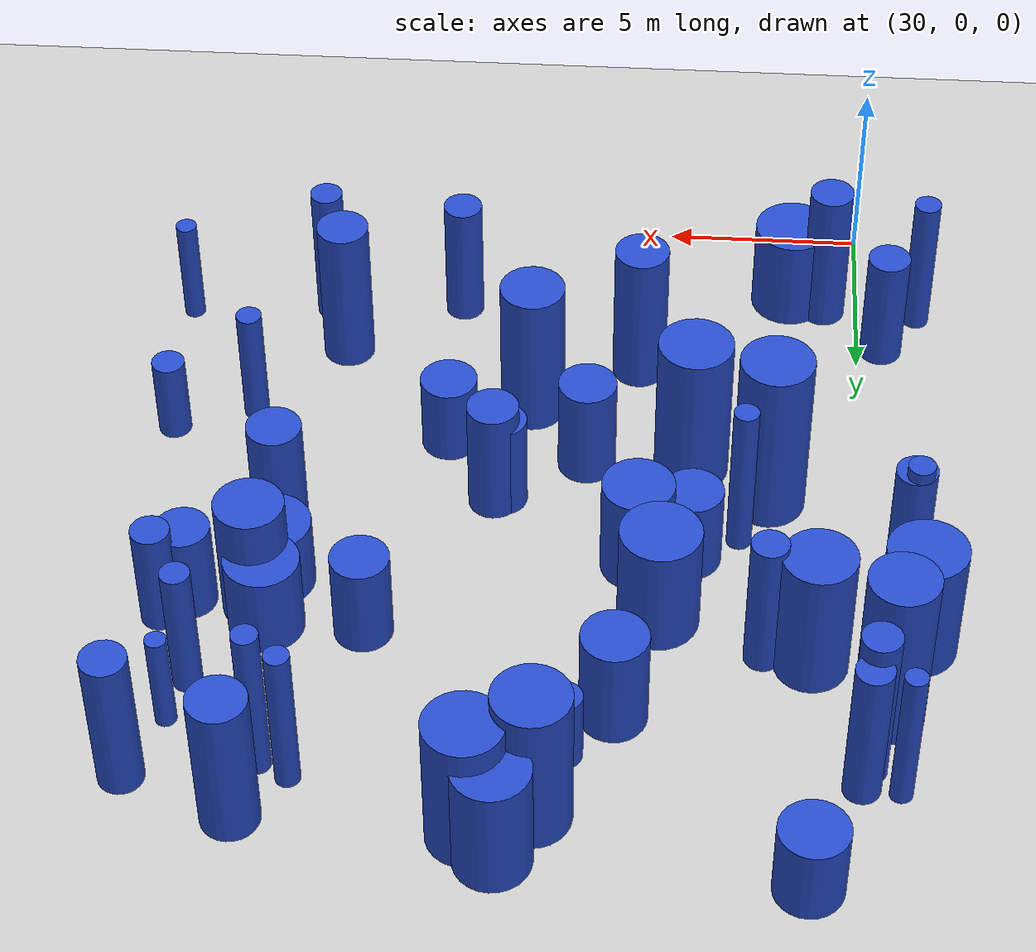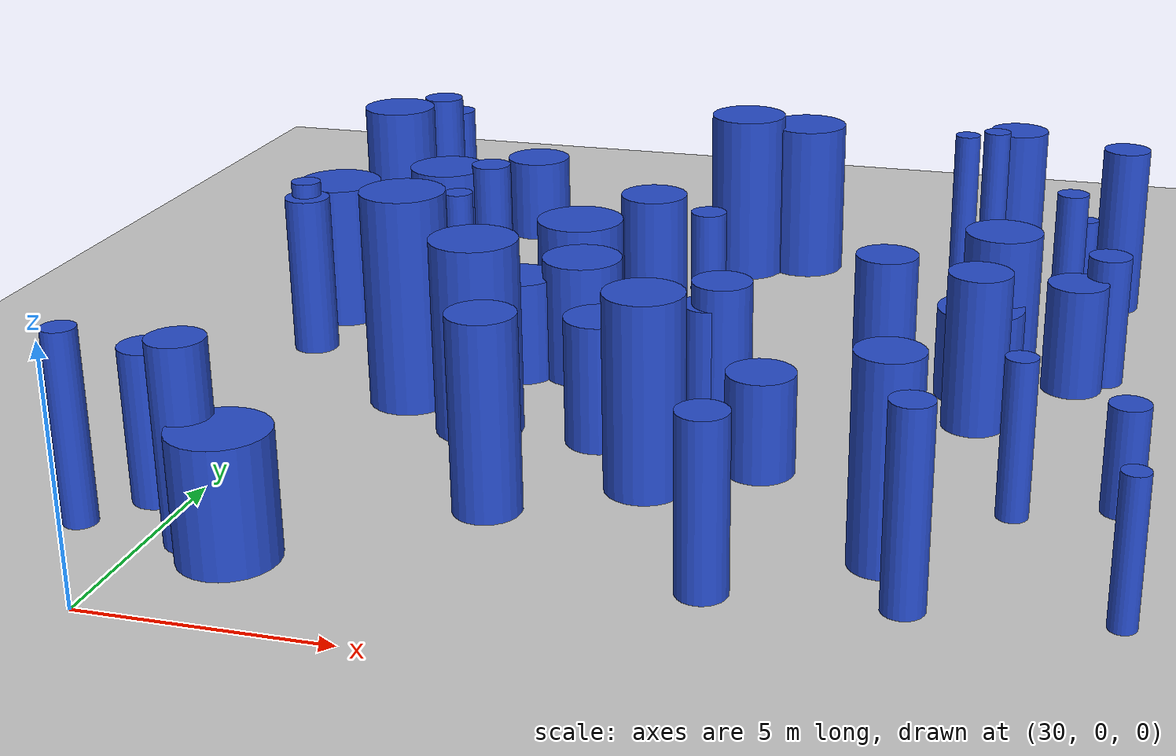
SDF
<sdf version="1.6">
 <world name="default">
  <model name="ground_plane">
   <static>1</static>
   <link name="link">
    <collision name="collision">
     <geometry><plane><normal>0 0 1</normal><size>100 100</size></plane></geometry>
     <surface><friction><ode><mu>100</mu><mu2>50</mu2></ode></friction></surface>
    </collision>
    <visual name="visual">
     <cast_shadows>0</cast_shadows>
     <geometry><plane><normal>0 0 1</normal><size>100 100</size></plane></geometry>
     <material>
      <script><uri>file://media/materials/scripts/gazebo.material</uri><name>Gazebo/Grey</name></script>
     </material>
    </visual>
   </link>
  </model>
  <model name="6">
   <static>0</static>
   <link name="link">
    <inertial>
     <mass>2</mass>
     <inertia>
      <ixx>0.798572</ixx>
      <ixy>0</ixy>
      <ixz>0</ixz>
      <iyy>0.798572</iyy>
      <iyz>0</iyz>
      <izz>0.198941</izz>
     </inertia>
    </inertial>
    <collision name="collision">
     <geometry><cylinder><length>2.04807</length><radius>0.446028</radius></cylinder></geometry>
     <surface><contact><collide_without_contact>1</collide_without_contact></contact></surface>
    </collision>
    <visual name="visual">
     <geometry><cylinder><length>2.04807</length><radius>0.446028</radius></cylinder></geometry>
     <material>
      <script><uri>file://media/materials/scripts/gazebo.material</uri><name>Gazebo/Blue</name></script>
     </material>
    </visual>
    <gravity>0</gravity>
   </link>
   <pose>36.9335 18.7301 1.02404 0 -0 0</pose>
  </model>
  <model name="19">
   <static>0</static>
   <link name="link">
    <inertial>
     <mass>2</mass>
     <inertia><ixx>1.56851</ixx><ixy>0</ixy><ixz>0</ixz><iyy>1.56851</iyy><iyz>0</iyz><izz>0.224417</izz></inertia>
    </inertial>
    <collision name="collision">
     <geometry><cylinder><length>2.95598</length><radius>0.473727</radius></cylinder></geometry>
     <surface><contact><collide_without_contact>1</collide_without_contact></contact></surface>
    </collision>
    <visual name="visual">
     <geometry><cylinder><length>2.95598</length><radius>0.473727</radius></cylinder></geometry>
     <material>
      <script><uri>file://media/materials/scripts/gazebo.material</uri><name>Gazebo/Blue</name></script>
     </material>
    </visual>
    <gravity>0</gravity>
   </link>
   <pose>46.86 15.0199 1.47799 0 -0 0</pose>
  </model>
  <model name="22">
   <static>0</static>
   <link name="link">
    <inertial>
     <mass>2</mass>
     <inertia><ixx>2.6096</ixx><ixy>0</ixy><ixz>0</ixz><iyy>2.6096</iyy><iyz>0</iyz><izz>0.20705</izz></inertia>
    </inertial>
    <collision name="collision">
     <geometry><cylinder><length>3.87769</length><radius>0.455027</radius></cylinder></geometry>
     <surface><contact><collide_without_contact>1</collide_without_contact></contact></surface>
    </collision>
    <visual name="visual">
     <geometry><cylinder><length>3.87769</length><radius>0.455027</radius></cylinder></geometry>
     <material>
      <script><uri>file://media/materials/scripts/gazebo.material</uri><name>Gazebo/Blue</name></script>
     </material>
    </visual>
    <gravity>0</gravity>
   </link>
   <pose>32.4033 15.4487 1.93884 0 -0 0</pose>
  </model>
  <model name="36">
   <static>0</static>
   <link name="link">
    <inertial>
     <mass>2</mass>
     <inertia><ixx>1.08426</ixx><ixy>0</ixy><ixz>0</ixz><iyy>1.08426</iyy><iyz>0</iyz><izz>0.683304</izz></inertia>
    </inertial>
    <collision name="collision">
     <geometry><cylinder><length>2.11084</length><radius>0.826622</radius></cylinder></geometry>
     <surface><contact><collide_without_contact>1</collide_without_contact></contact></surface>
    </collision>
    <visual name="visual">
     <geometry><cylinder><length>2.11084</length><radius>0.826622</radius></cylinder></geometry>
     <material>
      <script><uri>file://media/materials/scripts/gazebo.material</uri><name>Gazebo/Blue</name></script>
     </material>
    </visual>
    <gravity>0</gravity>
   </link>
   <pose>31.3215 22.2177 1.05542 0 -0 0</pose>
  </model>
  <model name="43">
   <static>0</static>
   <link name="link">
    <inertial>
     <mass>2</mass>
     <inertia><ixx>2.34581</ixx><ixy>0</ixy><ixz>0</ixz><iyy>2.34581</iyy><iyz>0</iyz><izz>0.257799</izz></inertia>
    </inertial>
    <collision name="collision">
     <geometry><cylinder><length>3.64712</length><radius>0.507739</radius></cylinder></geometry>
     <surface><contact><collide_without_contact>1</collide_without_contact></contact></surface>
    </collision>
    <visual name="visual">
     <geometry><cylinder><length>3.64712</length><radius>0.507739</radius></cylinder></geometry>
     <material>
      <script><uri>file://media/materials/scripts/gazebo.material</uri><name>Gazebo/Blue</name></script>
     </material>
    </visual>
    <gravity>0</gravity>
   </link>
   <pose>28.9554 12.6154 1.82356 0 -0 0</pose>
  </model>
  <model name="44">
   <static>0</static>
   <link name="link">
    <inertial>
     <mass>2</mass>
     <inertia><ixx>1.1939</ixx><ixy>0</ixy><ixz>0</ixz><iyy>1.1939</iyy><iyz>0</iyz><izz>0.566577</izz></inertia>
    </inertial>
    <collision name="collision">
     <geometry><cylinder><length>2.33744</length><radius>0.752713</radius></cylinder></geometry>
     <surface><contact><collide_without_contact>1</collide_without_contact></contact></surface>
    </collision>
    <visual name="visual">
     <geometry><cylinder><length>2.33744</length><radius>0.752713</radius></cylinder></geometry>
     <material>
      <script><uri>file://media/materials/scripts/gazebo.material</uri><name>Gazebo/Blue</name></script>
     </material>
    </visual>
    <gravity>0</gravity>
   </link>
   <pose>34.1931 12.2769 1.16872 0 -0 0</pose>
  </model>
  <model name="45">
   <static>0</static>
   <link name="link">
    <inertial>
     <mass>2</mass>
     <inertia>
      <ixx>3.27441</ixx>
      <ixy>0</ixy>
      <ixz>0</ixz>
      <iyy>3.27441</iyy>
      <iyz>0</iyz>
      <izz>0.0994808</izz>
     </inertia>
    </inertial>
    <collision name="collision">
     <geometry><cylinder><length>4.39864</length><radius>0.315406</radius></cylinder></geometry>
     <surface><contact><collide_without_contact>1</collide_without_contact></contact></surface>
    </collision>
    <visual name="visual">
     <geometry><cylinder><length>4.39864</length><radius>0.315406</radius></cylinder></geometry>
     <material>
      <script><uri>file://media/materials/scripts/gazebo.material</uri><name>Gazebo/Blue</name></script>
     </material>
    </visual>
    <gravity>0</gravity>
   </link>
   <pose>43.9023 19.4399 2.19932 0 -0 0</pose>
  </model>
  <model name="57">
   <static>0</static>
   <link name="link">
    <inertial>
     <mass>2</mass>
     <inertia>
      <ixx>2.94814</ixx>
      <ixy>0</ixy>
      <ixz>0</ixz>
      <iyy>2.94814</iyy>
      <iyz>0</iyz>
      <izz>0.0910601</izz>
     </inertia>
    </inertial>
    <collision name="collision">
     <geometry><cylinder><length>4.17321</length><radius>0.301762</radius></cylinder></geometry>
     <surface><contact><collide_without_contact>1</collide_without_contact></contact></surface>
    </collision>
    <visual name="visual">
     <geometry><cylinder><length>4.17321</length><radius>0.301762</radius></cylinder></geometry>
     <material>
      <script><uri>file://media/materials/scripts/gazebo.material</uri><name>Gazebo/Blue</name></script>
     </material>
    </visual>
    <gravity>0</gravity>
   </link>
   <pose>43.17 19.804 2.0866 0 -0 0</pose>
  </model>
  <model name="72">
   <static>0</static>
   <link name="link">
    <inertial>
     <mass>2</mass>
     <inertia><ixx>2.87764</ixx><ixy>0</ixy><ixz>0</ixz><iyy>2.87764</iyy><iyz>0</iyz><izz>0.901467</izz></inertia>
    </inertial>
    <collision name="collision">
     <geometry><cylinder><length>3.81594</length><radius>0.949456</radius></cylinder></geometry>
     <surface><contact><collide_without_contact>1</collide_without_contact></contact></surface>
    </collision>
    <visual name="visual">
     <geometry><cylinder><length>3.81594</length><radius>0.949456</radius></cylinder></geometry>
     <material>
      <script><uri>file://media/materials/scripts/gazebo.material</uri><name>Gazebo/Blue</name></script>
     </material>
    </visual>
    <gravity>0</gravity>
   </link>
   <pose>38.974 21.1839 1.90797 0 -0 0</pose>
  </model>
  <model name="82">
   <static>0</static>
   <link name="link">
    <inertial>
     <mass>2</mass>
     <inertia><ixx>1.12573</ixx><ixy>0</ixy><ixz>0</ixz><iyy>1.12573</iyy><iyz>0</iyz><izz>0.909327</izz></inertia>
    </inertial>
    <collision name="collision">
     <geometry><cylinder><length>2.00659</length><radius>0.953587</radius></cylinder></geometry>
     <surface><contact><collide_without_contact>1</collide_without_contact></contact></surface>
    </collision>
    <visual name="visual">
     <geometry><cylinder><length>2.00659</length><radius>0.953587</radius></cylinder></geometry>
     <material>
      <script><uri>file://media/materials/scripts/gazebo.material</uri><name>Gazebo/Blue</name></script>
     </material>
    </visual>
    <gravity>0</gravity>
   </link>
   <pose>44.2313 13.6334 1.0033 0 -0 0</pose>
  </model>
  <model name="83">
   <static>0</static>
   <link name="link">
    <inertial>
     <mass>2</mass>
     <inertia><ixx>2.69133</ixx><ixy>0</ixy><ixz>0</ixz><iyy>2.69133</iyy><iyz>0</iyz><izz>0.117303</izz></inertia>
    </inertial>
    <collision name="collision">
     <geometry><cylinder><length>3.97443</length><radius>0.342496</radius></cylinder></geometry>
     <surface><contact><collide_without_contact>1</collide_without_contact></contact></surface>
    </collision>
    <visual name="visual">
     <geometry><cylinder><length>3.97443</length><radius>0.342496</radius></cylinder></geometry>
     <material>
      <script><uri>file://media/materials/scripts/gazebo.material</uri><name>Gazebo/Blue</name></script>
     </material>
    </visual>
    <gravity>0</gravity>
   </link>
   <pose>28.4111 3.06658 1.98721 0 -0 0</pose>
  </model>
  <model name="86">
   <static>0</static>
   <link name="link">
    <inertial>
     <mass>2</mass>
     <inertia><ixx>3.4008</ixx><ixy>0</ixy><ixz>0</ixz><iyy>3.4008</iyy><iyz>0</iyz><izz>0.876047</izz></inertia>
    </inertial>
    <collision name="collision">
     <geometry><cylinder><length>4.21624</length><radius>0.935974</radius></cylinder></geometry>
     <surface><contact><collide_without_contact>1</collide_without_contact></contact></surface>
    </collision>
    <visual name="visual">
     <geometry><cylinder><length>4.21624</length><radius>0.935974</radius></cylinder></geometry>
     <material>
      <script><uri>file://media/materials/scripts/gazebo.material</uri><name>Gazebo/Blue</name></script>
     </material>
    </visual>
    <gravity>0</gravity>
   </link>
   <pose>34.2648 9.11138 2.10812 0 -0 0</pose>
  </model>
  <model name="87">
   <static>0</static>
   <link name="link">
    <inertial>
     <mass>2</mass>
     <inertia><ixx>2.04351</ixx><ixy>0</ixy><ixz>0</ixz><iyy>2.04351</iyy><iyz>0</iyz><izz>0.993499</izz></inertia>
    </inertial>
    <collision name="collision">
     <geometry><cylinder><length>3.0464</length><radius>0.996744</radius></cylinder></geometry>
     <surface><contact><collide_without_contact>1</collide_without_contact></contact></surface>
    </collision>
    <visual name="visual">
     <geometry><cylinder><length>3.0464</length><radius>0.996744</radius></cylinder></geometry>
     <material>
      <script><uri>file://media/materials/scripts/gazebo.material</uri><name>Gazebo/Blue</name></script>
     </material>
    </visual>
    <gravity>0</gravity>
   </link>
   <pose>34.9165 14.3917 1.5232 0 -0 0</pose>
  </model>
  <model name="88">
   <static>0</static>
   <link name="link">
    <inertial>
     <mass>2</mass>
     <inertia><ixx>1.53786</ixx><ixy>0</ixy><ixz>0</ixz><iyy>1.53786</iyy><iyz>0</iyz><izz>0.534153</izz></inertia>
    </inertial>
    <collision name="collision">
     <geometry><cylinder><length>2.76129</length><radius>0.730858</radius></cylinder></geometry>
     <surface><contact><collide_without_contact>1</collide_without_contact></contact></surface>
    </collision>
    <visual name="visual">
     <geometry><cylinder><length>2.76129</length><radius>0.730858</radius></cylinder></geometry>
     <material>
      <script><uri>file://media/materials/scripts/gazebo.material</uri><name>Gazebo/Blue</name></script>
     </material>
    </visual>
    <gravity>0</gravity>
   </link>
   <pose>36.906 9.11292 1.38065 0 -0 0</pose>
  </model>
  <model name="93">
   <static>0</static>
   <link name="link">
    <inertial>
     <mass>2</mass>
     <inertia><ixx>4.1964</ixx><ixy>0</ixy><ixz>0</ixz><iyy>4.1964</iyy><iyz>0</iyz><izz>0.839935</izz></inertia>
    </inertial>
    <collision name="collision">
     <geometry><cylinder><length>4.76011</length><radius>0.91648</radius></cylinder></geometry>
     <surface><contact><collide_without_contact>1</collide_without_contact></contact></surface>
    </collision>
    <visual name="visual">
     <geometry><cylinder><length>4.76011</length><radius>0.91648</radius></cylinder></geometry>
     <material>
      <script><uri>file://media/materials/scripts/gazebo.material</uri><name>Gazebo/Blue</name></script>
     </material>
    </visual>
    <gravity>0</gravity>
   </link>
   <pose>32.3039 10.2034 2.38005 0 -0 0</pose>
  </model>
  <model name="97">
   <static>0</static>
   <link name="link">
    <inertial>
     <mass>2</mass>
     <inertia><ixx>3.54501</ixx><ixy>0</ixy><ixz>0</ixz><iyy>3.54501</iyy><iyz>0</iyz><izz>0.223195</izz></inertia>
    </inertial>
    <collision name="collision">
     <geometry><cylinder><length>4.53878</length><radius>0.472435</radius></cylinder></geometry>
     <surface><contact><collide_without_contact>1</collide_without_contact></contact></surface>
    </collision>
    <visual name="visual">
     <geometry><cylinder><length>4.53878</length><radius>0.472435</radius></cylinder></geometry>
     <material>
      <script><uri>file://media/materials/scripts/gazebo.material</uri><name>Gazebo/Blue</name></script>
     </material>
    </visual>
    <gravity>0</gravity>
   </link>
   <pose>29.9844 18.7604 2.26939 0 -0 0</pose>
  </model>
  <model name="98">
   <static>0</static>
   <link name="link">
    <inertial>
     <mass>2</mass>
     <inertia><ixx>2.18267</ixx><ixy>0</ixy><ixz>0</ixz><iyy>2.18267</iyy><iyz>0</iyz><izz>0.247763</izz></inertia>
    </inertial>
    <collision name="collision">
     <geometry><cylinder><length>3.51465</length><radius>0.497758</radius></cylinder></geometry>
     <surface><contact><collide_without_contact>1</collide_without_contact></contact></surface>
    </collision>
    <visual name="visual">
     <geometry><cylinder><length>3.51465</length><radius>0.497758</radius></cylinder></geometry>
     <material>
      <script><uri>file://media/materials/scripts/gazebo.material</uri><name>Gazebo/Blue</name></script>
     </material>
    </visual>
    <gravity>0</gravity>
   </link>
   <pose>40.4795 3.31545 1.75732 0 -0 0</pose>
  </model>
  <model name="99">
   <static>0</static>
   <link name="link">
    <inertial>
     <mass>2</mass>
     <inertia>
      <ixx>1.49455</ixx>
      <ixy>0</ixy>
      <ixz>0</ixz>
      <iyy>1.49455</iyy>
      <iyz>0</iyz>
      <izz>0.0714187</izz>
     </inertia>
    </inertial>
    <collision name="collision">
     <geometry><cylinder><length>2.95856</length><radius>0.267243</radius></cylinder></geometry>
     <surface><contact><collide_without_contact>1</collide_without_contact></contact></surface>
    </collision>
    <visual name="visual">
     <geometry><cylinder><length>2.95856</length><radius>0.267243</radius></cylinder></geometry>
     <material>
      <script><uri>file://media/materials/scripts/gazebo.material</uri><name>Gazebo/Blue</name></script>
     </material>
    </visual>
    <gravity>0</gravity>
   </link>
   <pose>47.7187 3.91039 1.47928 0 -0 0</pose>
  </model>
  <model name="100">
   <static>0</static>
   <link name="link">
    <inertial>
     <mass>2</mass>
     <inertia><ixx>2.86751</ixx><ixy>0</ixy><ixz>0</ixz><iyy>2.86751</iyy><iyz>0</iyz><izz>0.204569</izz></inertia>
    </inertial>
    <collision name="collision">
     <geometry><cylinder><length>4.07325</length><radius>0.452293</radius></cylinder></geometry>
     <surface><contact><collide_without_contact>1</collide_without_contact></contact></surface>
    </collision>
    <visual name="visual">
     <geometry><cylinder><length>4.07325</length><radius>0.452293</radius></cylinder></geometry>
     <material>
      <script><uri>file://media/materials/scripts/gazebo.material</uri><name>Gazebo/Blue</name></script>
     </material>
    </visual>
    <gravity>0</gravity>
   </link>
   <pose>30.1114 19.322 2.03662 0 -0 0</pose>
  </model>
  <model name="101">
   <static>0</static>
   <link name="link">
    <inertial>
     <mass>2</mass>
     <inertia><ixx>1.24291</ixx><ixy>0</ixy><ixz>0</ixz><iyy>1.24291</iyy><iyz>0</iyz><izz>0.443789</izz></inertia>
    </inertial>
    <collision name="collision">
     <geometry><cylinder><length>2.47509</length><radius>0.666175</radius></cylinder></geometry>
     <surface><contact><collide_without_contact>1</collide_without_contact></contact></surface>
    </collision>
    <visual name="visual">
     <geometry><cylinder><length>2.47509</length><radius>0.666175</radius></cylinder></geometry>
     <material>
      <script><uri>file://media/materials/scripts/gazebo.material</uri><name>Gazebo/Blue</name></script>
     </material>
    </visual>
    <gravity>0</gravity>
   </link>
   <pose>46.2352 14.4153 1.23755 0 -0 0</pose>
  </model>
  <model name="109">
   <static>0</static>
   <link name="link">
    <inertial>
     <mass>2</mass>
     <inertia>
      <ixx>3.21555</ixx>
      <ixy>0</ixy>
      <ixz>0</ixz>
      <iyy>3.21555</iyy>
      <iyz>0</iyz>
      <izz>0.0969997</izz>
     </inertia>
    </inertial>
    <collision name="collision">
     <geometry><cylinder><length>4.35916</length><radius>0.311448</radius></cylinder></geometry>
     <surface><contact><collide_without_contact>1</collide_without_contact></contact></surface>
    </collision>
    <visual name="visual">
     <geometry><cylinder><length>4.35916</length><radius>0.311448</radius></cylinder></geometry>
     <material>
      <script><uri>file://media/materials/scripts/gazebo.material</uri><name>Gazebo/Blue</name></script>
     </material>
    </visual>
    <gravity>0</gravity>
   </link>
   <pose>33.0139 11.622 2.17958 0 -0 0</pose>
  </model>
  <model name="116">
   <static>0</static>
   <link name="link">
    <inertial>
     <mass>2</mass>
     <inertia><ixx>1.02695</ixx><ixy>0</ixy><ixz>0</ixz><iyy>1.02695</iyy><iyz>0</iyz><izz>0.517282</izz></inertia>
    </inertial>
    <collision name="collision">
     <geometry><cylinder><length>2.14705</length><radius>0.719223</radius></cylinder></geometry>
     <surface><contact><collide_without_contact>1</collide_without_contact></contact></surface>
    </collision>
    <visual name="visual">
     <geometry><cylinder><length>2.14705</length><radius>0.719223</radius></cylinder></geometry>
     <material>
      <script><uri>file://media/materials/scripts/gazebo.material</uri><name>Gazebo/Blue</name></script>
     </material>
    </visual>
    <gravity>0</gravity>
   </link>
   <pose>40.4286 8.5032 1.07353 0 -0 0</pose>
  </model>
  <model name="118">
   <static>0</static>
   <link name="link">
    <inertial>
     <mass>2</mass>
     <inertia><ixx>2.84514</ixx><ixy>0</ixy><ixz>0</ixz><iyy>2.84514</iyy><iyz>0</iyz><izz>0.30271</izz></inertia>
    </inertial>
    <collision name="collision">
     <geometry><cylinder><length>4.02029</length><radius>0.550191</radius></cylinder></geometry>
     <surface><contact><collide_without_contact>1</collide_without_contact></contact></surface>
    </collision>
    <visual name="visual">
     <geometry><cylinder><length>4.02029</length><radius>0.550191</radius></cylinder></geometry>
     <material>
      <script><uri>file://media/materials/scripts/gazebo.material</uri><name>Gazebo/Blue</name></script>
     </material>
    </visual>
    <gravity>0</gravity>
   </link>
   <pose>46.9727 19.9979 2.01015 0 -0 0</pose>
  </model>
  <model name="119">
   <static>0</static>
   <link name="link">
    <inertial>
     <mass>2</mass>
     <inertia><ixx>1.28123</ixx><ixy>0</ixy><ixz>0</ixz><iyy>1.28123</iyy><iyz>0</iyz><izz>0.846377</izz></inertia>
    </inertial>
    <collision name="collision">
     <geometry><cylinder><length>2.26897</length><radius>0.919988</radius></cylinder></geometry>
     <surface><contact><collide_without_contact>1</collide_without_contact></contact></surface>
    </collision>
    <visual name="visual">
     <geometry><cylinder><length>2.26897</length><radius>0.919988</radius></cylinder></geometry>
     <material>
      <script><uri>file://media/materials/scripts/gazebo.material</uri><name>Gazebo/Blue</name></script>
     </material>
    </visual>
    <gravity>0</gravity>
   </link>
   <pose>44.2743 15.1347 1.13449 0 -0 0</pose>
  </model>
  <model name="120">
   <static>0</static>
   <link name="link">
    <inertial>
     <mass>2</mass>
     <inertia><ixx>1.40868</ixx><ixy>0</ixy><ixz>0</ixz><iyy>1.40868</iyy><iyz>0</iyz><izz>0.339273</izz></inertia>
    </inertial>
    <collision name="collision">
     <geometry><cylinder><length>2.72658</length><radius>0.582472</radius></cylinder></geometry>
     <surface><contact><collide_without_contact>1</collide_without_contact></contact></surface>
    </collision>
    <visual name="visual">
     <geometry><cylinder><length>2.72658</length><radius>0.582472</radius></cylinder></geometry>
     <material>
      <script><uri>file://media/materials/scripts/gazebo.material</uri><name>Gazebo/Blue</name></script>
     </material>
    </visual>
    <gravity>0</gravity>
   </link>
   <pose>38.9033 10.5047 1.36329 0 -0 0</pose>
  </model>
  <model name="123">
   <static>0</static>
   <link name="link">
    <inertial>
     <mass>2</mass>
     <inertia><ixx>2.97522</ixx><ixy>0</ixy><ixz>0</ixz><iyy>2.97522</iyy><iyz>0</iyz><izz>0.477931</izz></inertia>
    </inertial>
    <collision name="collision">
     <geometry><cylinder><length>4.05186</length><radius>0.691325</radius></cylinder></geometry>
     <surface><contact><collide_without_contact>1</collide_without_contact></contact></surface>
    </collision>
    <visual name="visual">
     <geometry><cylinder><length>4.05186</length><radius>0.691325</radius></cylinder></geometry>
     <material>
      <script><uri>file://media/materials/scripts/gazebo.material</uri><name>Gazebo/Blue</name></script>
     </material>
    </visual>
    <gravity>0</gravity>
   </link>
   <pose>35.7167 5.49025 2.02593 0 -0 0</pose>
  </model>
  <model name="136">
   <static>0</static>
   <link name="link">
    <inertial>
     <mass>2</mass>
     <inertia><ixx>3.26897</ixx><ixy>0</ixy><ixz>0</ixz><iyy>3.26897</iyy><iyz>0</iyz><izz>0.863669</izz></inertia>
    </inertial>
    <collision name="collision">
     <geometry><cylinder><length>4.12587</length><radius>0.929338</radius></cylinder></geometry>
     <surface><contact><collide_without_contact>1</collide_without_contact></contact></surface>
    </collision>
    <visual name="visual">
     <geometry><cylinder><length>4.12587</length><radius>0.929338</radius></cylinder></geometry>
     <material>
      <script><uri>file://media/materials/scripts/gazebo.material</uri><name>Gazebo/Blue</name></script>
     </material>
    </visual>
    <gravity>0</gravity>
   </link>
   <pose>37.5394 20.5667 2.06294 0 -0 0</pose>
  </model>
  <model name="137">
   <static>0</static>
   <link name="link">
    <inertial>
     <mass>2</mass>
     <inertia><ixx>2.20257</ixx><ixy>0</ixy><ixz>0</ixz><iyy>2.20257</iyy><iyz>0</iyz><izz>0.461862</izz></inertia>
    </inertial>
    <collision name="collision">
     <geometry><cylinder><length>3.43945</length><radius>0.679604</radius></cylinder></geometry>
     <surface><contact><collide_without_contact>1</collide_without_contact></contact></surface>
    </collision>
    <visual name="visual">
     <geometry><cylinder><length>3.43945</length><radius>0.679604</radius></cylinder></geometry>
     <material>
      <script><uri>file://media/materials/scripts/gazebo.material</uri><name>Gazebo/Blue</name></script>
     </material>
    </visual>
    <gravity>0</gravity>
   </link>
   <pose>44.3325 11.8416 1.71973 0 -0 0</pose>
  </model>
  <model name="145">
   <static>0</static>
   <link name="link">
    <inertial>
     <mass>2</mass>
     <inertia><ixx>1.85346</ixx><ixy>0</ixy><ixz>0</ixz><iyy>1.85346</iyy><iyz>0</iyz><izz>0.103431</izz></inertia>
    </inertial>
    <collision name="collision">
     <geometry><cylinder><length>3.28793</length><radius>0.321608</radius></cylinder></geometry>
     <surface><contact><collide_without_contact>1</collide_without_contact></contact></surface>
    </collision>
    <visual name="visual">
     <geometry><cylinder><length>3.28793</length><radius>0.321608</radius></cylinder></geometry>
     <material>
      <script><uri>file://media/materials/scripts/gazebo.material</uri><name>Gazebo/Blue</name></script>
     </material>
    </visual>
    <gravity>0</gravity>
   </link>
   <pose>45.522 7.70919 1.64396 0 -0 0</pose>
  </model>
  <model name="148">
   <static>0</static>
   <link name="link">
    <inertial>
     <mass>2</mass>
     <inertia><ixx>1.67502</ixx><ixy>0</ixy><ixz>0</ixz><iyy>1.67502</iyy><iyz>0</iyz><izz>0.801009</izz></inertia>
    </inertial>
    <collision name="collision">
     <geometry><cylinder><length>2.76534</length><radius>0.894991</radius></cylinder></geometry>
     <surface><contact><collide_without_contact>1</collide_without_contact></contact></surface>
    </collision>
    <visual name="visual">
     <geometry><cylinder><length>2.76534</length><radius>0.894991</radius></cylinder></geometry>
     <material>
      <script><uri>file://media/materials/scripts/gazebo.material</uri><name>Gazebo/Blue</name></script>
     </material>
    </visual>
    <gravity>0</gravity>
   </link>
   <pose>35.5057 12.5909 1.38267 0 -0 0</pose>
  </model>
  <model name="150">
   <static>0</static>
   <link name="link">
    <inertial>
     <mass>2</mass>
     <inertia><ixx>1.93783</ixx><ixy>0</ixy><ixz>0</ixz><iyy>1.93783</iyy><iyz>0</iyz><izz>0.415516</izz></inertia>
    </inertial>
    <collision name="collision">
     <geometry><cylinder><length>3.22187</length><radius>0.644606</radius></cylinder></geometry>
     <surface><contact><collide_without_contact>1</collide_without_contact></contact></surface>
    </collision>
    <visual name="visual">
     <geometry><cylinder><length>3.22187</length><radius>0.644606</radius></cylinder></geometry>
     <material>
      <script><uri>file://media/materials/scripts/gazebo.material</uri><name>Gazebo/Blue</name></script>
     </material>
    </visual>
    <gravity>0</gravity>
   </link>
   <pose>39.1495 10.5867 1.61094 0 -0 0</pose>
  </model>
  <model name="152">
   <static>0</static>
   <link name="link">
    <inertial>
     <mass>2</mass>
     <inertia><ixx>2.38788</ixx><ixy>0</ixy><ixz>0</ixz><iyy>2.38788</iyy><iyz>0</iyz><izz>0.720026</izz></inertia>
    </inertial>
    <collision name="collision">
     <geometry><cylinder><length>3.48816</length><radius>0.848543</radius></cylinder></geometry>
     <surface><contact><collide_without_contact>1</collide_without_contact></contact></surface>
    </collision>
    <visual name="visual">
     <geometry><cylinder><length>3.48816</length><radius>0.848543</radius></cylinder></geometry>
     <material>
      <script><uri>file://media/materials/scripts/gazebo.material</uri><name>Gazebo/Blue</name></script>
     </material>
    </visual>
    <gravity>0</gravity>
   </link>
   <pose>44.5666 14.5232 1.74408 0 -0 0</pose>
  </model>
  <model name="154">
   <static>0</static>
   <link name="link">
    <inertial>
     <mass>2</mass>
     <inertia><ixx>2.68121</ixx><ixy>0</ixy><ixz>0</ixz><iyy>2.68121</iyy><iyz>0</iyz><izz>0.810306</izz></inertia>
    </inertial>
    <collision name="collision">
     <geometry><cylinder><length>3.69545</length><radius>0.90017</radius></cylinder></geometry>
     <surface><contact><collide_without_contact>1</collide_without_contact></contact></surface>
    </collision>
    <visual name="visual">
     <geometry><cylinder><length>3.69545</length><radius>0.90017</radius></cylinder></geometry>
     <material>
      <script><uri>file://media/materials/scripts/gazebo.material</uri><name>Gazebo/Blue</name></script>
     </material>
    </visual>
    <gravity>0</gravity>
   </link>
   <pose>31.2562 15.6058 1.84772 0 -0 0</pose>
  </model>
  <model name="155">
   <static>0</static>
   <link name="link">
    <inertial>
     <mass>2</mass>
     <inertia><ixx>2.71802</ixx><ixy>0</ixy><ixz>0</ixz><iyy>2.71802</iyy><iyz>0</iyz><izz>0.171185</izz></inertia>
    </inertial>
    <collision name="collision">
     <geometry><cylinder><length>3.97424</length><radius>0.413745</radius></cylinder></geometry>
     <surface><contact><collide_without_contact>1</collide_without_contact></contact></surface>
    </collision>
    <visual name="visual">
     <geometry><cylinder><length>3.97424</length><radius>0.413745</radius></cylinder></geometry>
     <material>
      <script><uri>file://media/materials/scripts/gazebo.material</uri><name>Gazebo/Blue</name></script>
     </material>
    </visual>
    <gravity>0</gravity>
   </link>
   <pose>44.0068 3.59498 1.98712 0 -0 0</pose>
  </model>
  <model name="167">
   <static>0</static>
   <link name="link">
    <inertial>
     <mass>2</mass>
     <inertia><ixx>2.97575</ixx><ixy>0</ixy><ixz>0</ixz><iyy>2.97575</iyy><iyz>0</iyz><izz>0.496613</izz></inertia>
    </inertial>
    <collision name="collision">
     <geometry><cylinder><length>4.04533</length><radius>0.704708</radius></cylinder></geometry>
     <surface><contact><collide_without_contact>1</collide_without_contact></contact></surface>
    </collision>
    <visual name="visual">
     <geometry><cylinder><length>4.04533</length><radius>0.704708</radius></cylinder></geometry>
     <material>
      <script><uri>file://media/materials/scripts/gazebo.material</uri><name>Gazebo/Blue</name></script>
     </material>
    </visual>
    <gravity>0</gravity>
   </link>
   <pose>44.3187 21.0253 2.02266 0 -0 0</pose>
  </model>
  <model name="168">
   <static>0</static>
   <link name="link">
    <inertial>
     <mass>2</mass>
     <inertia><ixx>1.86296</ixx><ixy>0</ixy><ixz>0</ixz><iyy>1.86296</iyy><iyz>0</iyz><izz>0.296661</izz></inertia>
    </inertial>
    <collision name="collision">
     <geometry><cylinder><length>3.20745</length><radius>0.544666</radius></cylinder></geometry>
     <surface><contact><collide_without_contact>1</collide_without_contact></contact></surface>
    </collision>
    <visual name="visual">
     <geometry><cylinder><length>3.20745</length><radius>0.544666</radius></cylinder></geometry>
     <material>
      <script><uri>file://media/materials/scripts/gazebo.material</uri><name>Gazebo/Blue</name></script>
     </material>
    </visual>
    <gravity>0</gravity>
   </link>
   <pose>29.3722 4.37823 1.60373 0 -0 0</pose>
  </model>
  <model name="169">
   <static>0</static>
   <link name="link">
    <inertial>
     <mass>2</mass>
     <inertia>
      <ixx>1.27619</ixx>
      <ixy>0</ixy>
      <ixz>0</ixz>
      <iyy>1.27619</iyy>
      <iyz>0</iyz>
      <izz>0.0662221</izz>
     </inertia>
    </inertial>
    <collision name="collision">
     <geometry><cylinder><length>2.73102</length><radius>0.257337</radius></cylinder></geometry>
     <surface><contact><collide_without_contact>1</collide_without_contact></contact></surface>
    </collision>
    <visual name="visual">
     <geometry><cylinder><length>2.73102</length><radius>0.257337</radius></cylinder></geometry>
     <material>
      <script><uri>file://media/materials/scripts/gazebo.material</uri><name>Gazebo/Blue</name></script>
     </material>
    </visual>
    <gravity>0</gravity>
   </link>
   <pose>46.2222 18.2269 1.36551 0 -0 0</pose>
  </model>
  <model name="170">
   <static>0</static>
   <link name="link">
    <inertial>
     <mass>2</mass>
     <inertia><ixx>1.62614</ixx><ixy>0</ixy><ixz>0</ixz><iyy>1.62614</iyy><iyz>0</iyz><izz>0.655865</izz></inertia>
    </inertial>
    <collision name="collision">
     <geometry><cylinder><length>2.79092</length><radius>0.809855</radius></cylinder></geometry>
     <surface><contact><collide_without_contact>1</collide_without_contact></contact></surface>
    </collision>
    <visual name="visual">
     <geometry><cylinder><length>2.79092</length><radius>0.809855</radius></cylinder></geometry>
     <material>
      <script><uri>file://media/materials/scripts/gazebo.material</uri><name>Gazebo/Blue</name></script>
     </material>
    </visual>
    <gravity>0</gravity>
   </link>
   <pose>35.848 17.5071 1.39546 0 -0 0</pose>
  </model>
  <model name="171">
   <static>0</static>
   <link name="link">
    <inertial>
     <mass>2</mass>
     <inertia><ixx>1.32113</ixx><ixy>0</ixy><ixz>0</ixz><iyy>1.32113</iyy><iyz>0</iyz><izz>0.517746</izz></inertia>
    </inertial>
    <collision name="collision">
     <geometry><cylinder><length>2.52459</length><radius>0.719546</radius></cylinder></geometry>
     <surface><contact><collide_without_contact>1</collide_without_contact></contact></surface>
    </collision>
    <visual name="visual">
     <geometry><cylinder><length>2.52459</length><radius>0.719546</radius></cylinder></geometry>
     <material>
      <script><uri>file://media/materials/scripts/gazebo.material</uri><name>Gazebo/Blue</name></script>
     </material>
    </visual>
    <gravity>0</gravity>
   </link>
   <pose>41.9355 15.171 1.26229 0 -0 0</pose>
  </model>
  <model name="175">
   <static>0</static>
   <link name="link">
    <inertial>
     <mass>2</mass>
     <inertia><ixx>2.09233</ixx><ixy>0</ixy><ixz>0</ixz><iyy>2.09233</iyy><iyz>0</iyz><izz>0.850902</izz></inertia>
    </inertial>
    <collision name="collision">
     <geometry><cylinder><length>3.16248</length><radius>0.922444</radius></cylinder></geometry>
     <surface><contact><collide_without_contact>1</collide_without_contact></contact></surface>
    </collision>
    <visual name="visual">
     <geometry><cylinder><length>3.16248</length><radius>0.922444</radius></cylinder></geometry>
     <material>
      <script><uri>file://media/materials/scripts/gazebo.material</uri><name>Gazebo/Blue</name></script>
     </material>
    </visual>
    <gravity>0</gravity>
   </link>
   <pose>38.3389 21.8535 1.58124 0 -0 0</pose>
  </model>
  <model name="182">
   <static>0</static>
   <link name="link">
    <inertial>
     <mass>2</mass>
     <inertia><ixx>2.3455</ixx><ixy>0</ixy><ixz>0</ixz><iyy>2.3455</iyy><iyz>0</iyz><izz>0.128632</izz></inertia>
    </inertial>
    <collision name="collision">
     <geometry><cylinder><length>3.69961</length><radius>0.358653</radius></cylinder></geometry>
     <surface><contact><collide_without_contact>1</collide_without_contact></contact></surface>
    </collision>
    <visual name="visual">
     <geometry><cylinder><length>3.69961</length><radius>0.358653</radius></cylinder></geometry>
     <material>
      <script><uri>file://media/materials/scripts/gazebo.material</uri><name>Gazebo/Blue</name></script>
     </material>
    </visual>
    <gravity>0</gravity>
   </link>
   <pose>45.8853 17.0491 1.84981 0 -0 0</pose>
  </model>
  <model name="186">
   <static>0</static>
   <link name="link">
    <inertial>
     <mass>2</mass>
     <inertia><ixx>1.58975</ixx><ixy>0</ixy><ixz>0</ixz><iyy>1.58975</iyy><iyz>0</iyz><izz>0.976743</izz></inertia>
    </inertial>
    <collision name="collision">
     <geometry><cylinder><length>2.57065</length><radius>0.988303</radius></cylinder></geometry>
     <surface><contact><collide_without_contact>1</collide_without_contact></contact></surface>
    </collision>
    <visual name="visual">
     <geometry><cylinder><length>2.57065</length><radius>0.988303</radius></cylinder></geometry>
     <material>
      <script><uri>file://media/materials/scripts/gazebo.material</uri><name>Gazebo/Blue</name></script>
     </material>
    </visual>
    <gravity>0</gravity>
   </link>
   <pose>31.8033 2.4684 1.28533 0 -0 0</pose>
  </model>
  <model name="195">
   <static>0</static>
   <link name="link">
    <inertial>
     <mass>2</mass>
     <inertia><ixx>2.93314</ixx><ixy>0</ixy><ixz>0</ixz><iyy>2.93314</iyy><iyz>0</iyz><izz>0.320002</izz></inertia>
    </inertial>
    <collision name="collision">
     <geometry><cylinder><length>4.07908</length><radius>0.565687</radius></cylinder></geometry>
     <surface><contact><collide_without_contact>1</collide_without_contact></contact></surface>
    </collision>
    <visual name="visual">
     <geometry><cylinder><length>4.07908</length><radius>0.565687</radius></cylinder></geometry>
     <material>
      <script><uri>file://media/materials/scripts/gazebo.material</uri><name>Gazebo/Blue</name></script>
     </material>
    </visual>
    <gravity>0</gravity>
   </link>
   <pose>30.8856 2.87461 2.03954 0 -0 0</pose>
  </model>
  <model name="199">
   <static>0</static>
   <link name="link">
    <inertial>
     <mass>2</mass>
     <inertia><ixx>2.68232</ixx><ixy>0</ixy><ixz>0</ixz><iyy>2.68232</iyy><iyz>0</iyz><izz>0.110041</izz></inertia>
    </inertial>
    <collision name="collision">
     <geometry><cylinder><length>3.97037</length><radius>0.331725</radius></cylinder></geometry>
     <surface><contact><collide_without_contact>1</collide_without_contact></contact></surface>
    </collision>
    <visual name="visual">
     <geometry><cylinder><length>3.97037</length><radius>0.331725</radius></cylinder></geometry>
     <material>
      <script><uri>file://media/materials/scripts/gazebo.material</uri><name>Gazebo/Blue</name></script>
     </material>
    </visual>
    <gravity>0</gravity>
   </link>
   <pose>28.8775 12.7667 1.98518 0 -0 0</pose>
  </model>
  <model name="200">
   <static>0</static>
   <link name="link">
    <inertial>
     <mass>2</mass>
     <inertia>
      <ixx>2.72184</ixx>
      <ixy>0</ixy>
      <ixz>0</ixz>
      <iyy>2.72184</iyy>
      <iyz>0</iyz>
      <izz>0.0756005</izz>
     </inertia>
    </inertial>
    <collision name="collision">
     <geometry><cylinder><length>4.01301</length><radius>0.274956</radius></cylinder></geometry>
     <surface><contact><collide_without_contact>1</collide_without_contact></contact></surface>
    </collision>
    <visual name="visual">
     <geometry><cylinder><length>4.01301</length><radius>0.274956</radius></cylinder></geometry>
     <material>
      <script><uri>file://media/materials/scripts/gazebo.material</uri><name>Gazebo/Blue</name></script>
     </material>
    </visual>
    <gravity>0</gravity>
   </link>
   <pose>29.2155 19.416 2.00651 0 -0 0</pose>
  </model>
  <model name="217">
   <static>0</static>
   <link name="link">
    <inertial>
     <mass>2</mass>
     <inertia>
      <ixx>0.935657</ixx>
      <ixy>0</ixy>
      <ixz>0</ixz>
      <iyy>0.935657</iyy>
      <iyz>0</iyz>
      <izz>0.172825</izz>
     </inertia>
    </inertial>
    <collision name="collision">
     <geometry><cylinder><length>2.25731</length><radius>0.415722</radius></cylinder></geometry>
     <surface><contact><collide_without_contact>1</collide_without_contact></contact></surface>
    </collision>
    <visual name="visual">
     <geometry><cylinder><length>2.25731</length><radius>0.415722</radius></cylinder></geometry>
     <material>
      <script><uri>file://media/materials/scripts/gazebo.material</uri><name>Gazebo/Blue</name></script>
     </material>
    </visual>
    <gravity>0</gravity>
   </link>
   <pose>47.5424 8.43529 1.12866 0 -0 0</pose>
  </model>
  <model name="224">
   <static>0</static>
   <link name="link">
    <inertial>
     <mass>2</mass>
     <inertia><ixx>3.16127</ixx><ixy>0</ixy><ixz>0</ixz><iyy>3.16127</iyy><iyz>0</iyz><izz>0.673623</izz></inertia>
    </inertial>
    <collision name="collision">
     <geometry><cylinder><length>4.11664</length><radius>0.820745</radius></cylinder></geometry>
     <surface><contact><collide_without_contact>1</collide_without_contact></contact></surface>
    </collision>
    <visual name="visual">
     <geometry><cylinder><length>4.11664</length><radius>0.820745</radius></cylinder></geometry>
     <material>
      <script><uri>file://media/materials/scripts/gazebo.material</uri><name>Gazebo/Blue</name></script>
     </material>
    </visual>
    <gravity>0</gravity>
   </link>
   <pose>38.4007 7.15799 2.05832 0 -0 0</pose>
  </model>
  <model name="231">
   <static>0</static>
   <link name="link">
    <inertial>
     <mass>2</mass>
     <inertia><ixx>3.99911</ixx><ixy>0</ixy><ixz>0</ixz><iyy>3.99911</iyy><iyz>0</iyz><izz>0.715938</izz></inertia>
    </inertial>
    <collision name="collision">
     <geometry><cylinder><length>4.67406</length><radius>0.846131</radius></cylinder></geometry>
     <surface><contact><collide_without_contact>1</collide_without_contact></contact></surface>
    </collision>
    <visual name="visual">
     <geometry><cylinder><length>4.67406</length><radius>0.846131</radius></cylinder></geometry>
     <material>
      <script><uri>file://media/materials/scripts/gazebo.material</uri><name>Gazebo/Blue</name></script>
     </material>
    </visual>
    <gravity>0</gravity>
   </link>
   <pose>29.4575 17.1199 2.33703 0 -0 0</pose>
  </model>
  <model name="234">
   <static>0</static>
   <link name="link">
    <inertial>
     <mass>2</mass>
     <inertia><ixx>3.13441</ixx><ixy>0</ixy><ixz>0</ixz><iyy>3.13441</iyy><iyz>0</iyz><izz>0.438051</izz></inertia>
    </inertial>
    <collision name="collision">
     <geometry><cylinder><length>4.18238</length><radius>0.661854</radius></cylinder></geometry>
     <surface><contact><collide_without_contact>1</collide_without_contact></contact></surface>
    </collision>
    <visual name="visual">
     <geometry><cylinder><length>4.18238</length><radius>0.661854</radius></cylinder></geometry>
     <material>
      <script><uri>file://media/materials/scripts/gazebo.material</uri><name>Gazebo/Blue</name></script>
     </material>
    </visual>
    <gravity>0</gravity>
   </link>
   <pose>43.3973 5.18568 2.09119 0 -0 0</pose>
  </model>
  <model name="235">
   <static>0</static>
   <link name="link">
    <inertial>
     <mass>2</mass>
     <inertia><ixx>2.35669</ixx><ixy>0</ixy><ixz>0</ixz><iyy>2.35669</iyy><iyz>0</iyz><izz>0.955242</izz></inertia>
    </inertial>
    <collision name="collision">
     <geometry><cylinder><length>3.35774</length><radius>0.977365</radius></cylinder></geometry>
     <surface><contact><collide_without_contact>1</collide_without_contact></contact></surface>
    </collision>
    <visual name="visual">
     <geometry><cylinder><length>3.35774</length><radius>0.977365</radius></cylinder></geometry>
     <material>
      <script><uri>file://media/materials/scripts/gazebo.material</uri><name>Gazebo/Blue</name></script>
     </material>
    </visual>
    <gravity>0</gravity>
   </link>
   <pose>28.7435 14.8898 1.67887 0 -0 0</pose>
  </model>
 </world>
</sdf>
